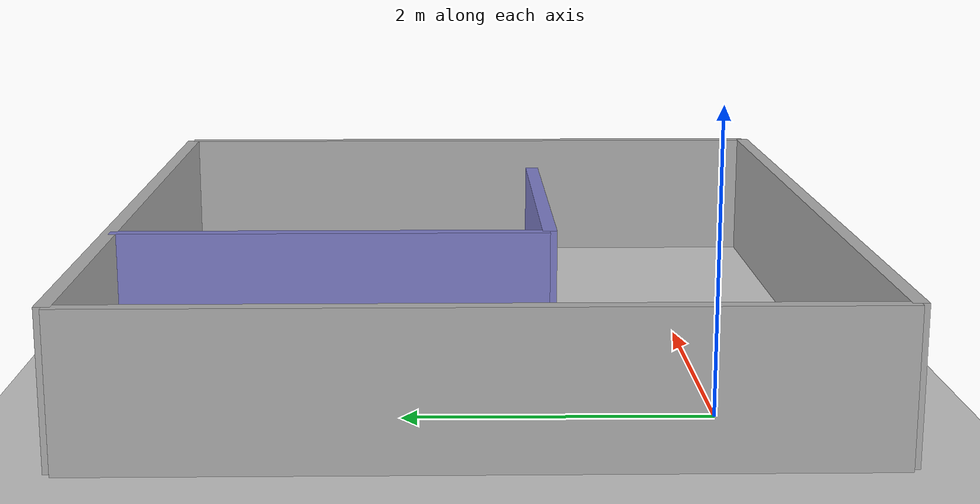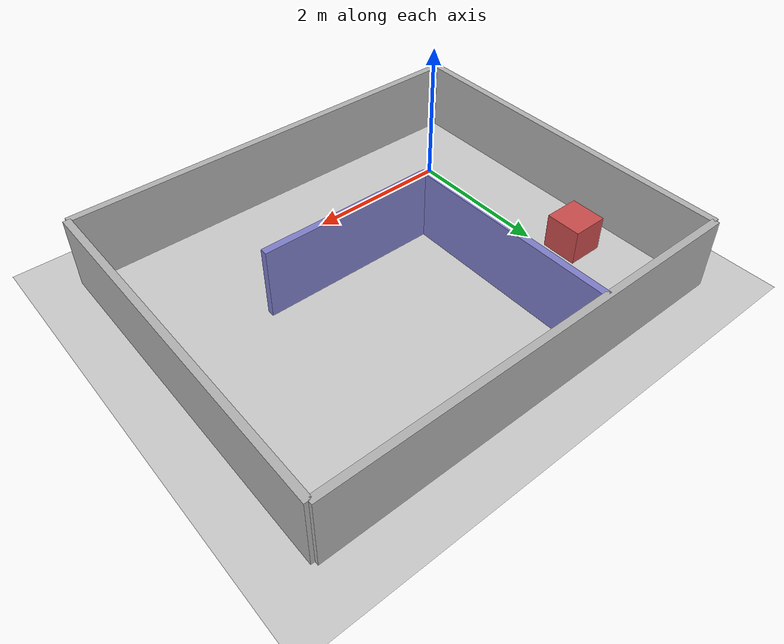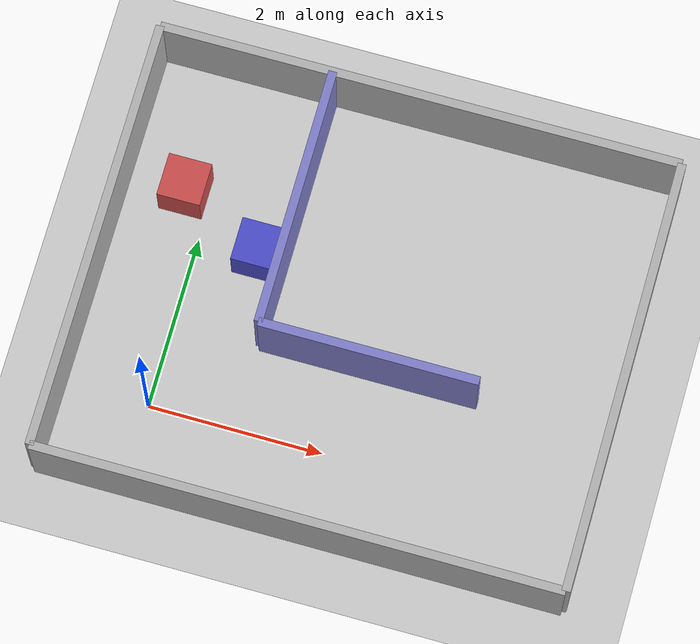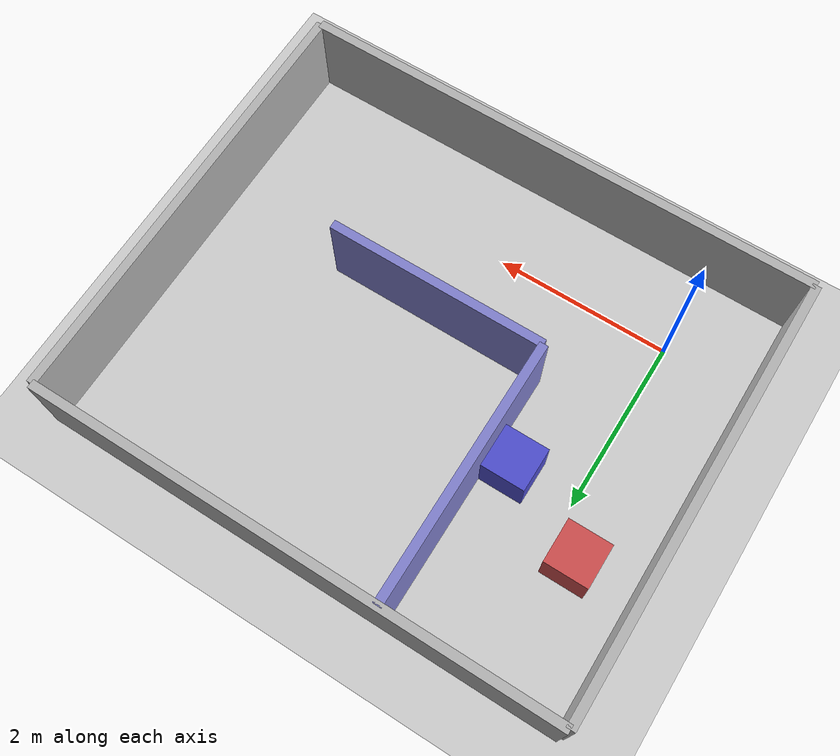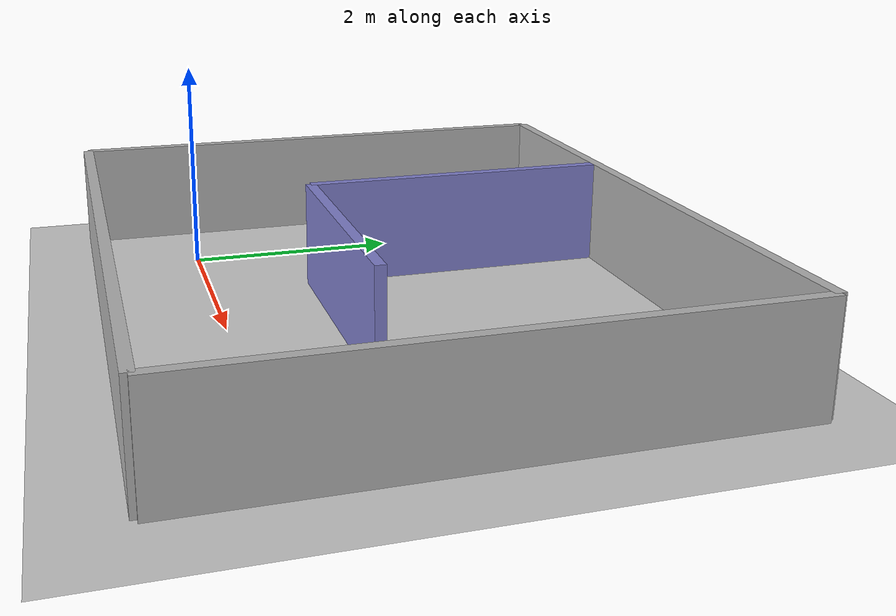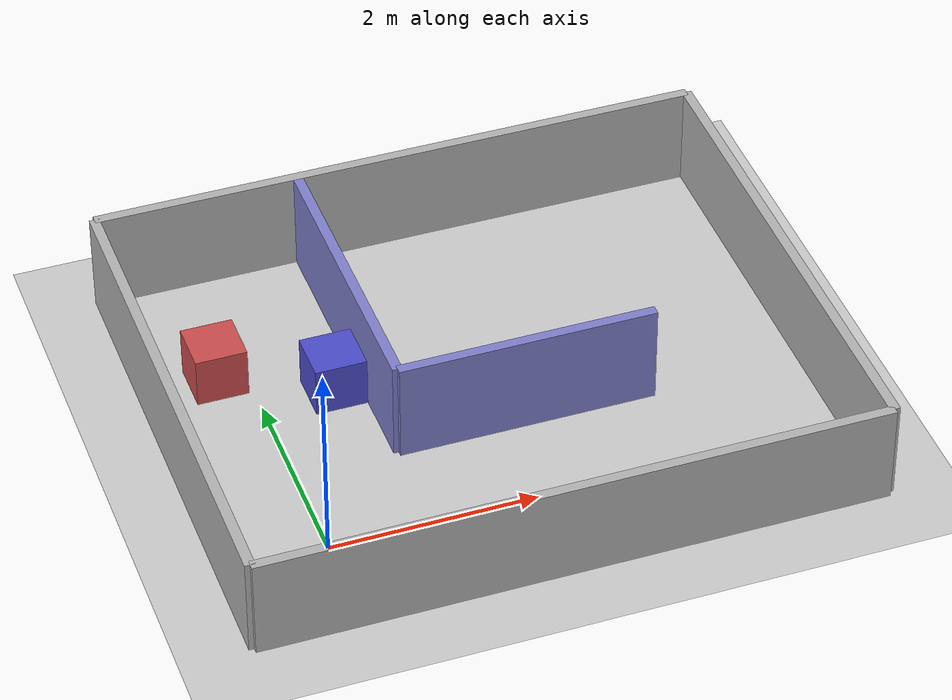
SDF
<?xml version="1.0" ?>
<sdf version="1.5">
  <world name="corridor_obstacle">

    <!-- 조명 + 바닥 -->
    <include><uri>model://sun</uri></include>
    <include><uri>model://ground_plane</uri></include>

    <!-- ===== 외벽 (6m x 5m) ===== -->

    <model name="wall_bottom">
      <static>true</static>
      <pose>2 -1 0.5 0 0 0</pose>
      <link name="link">
        <collision name="collision">
          <geometry><box><size>6 0.1 1</size></box></geometry>
        </collision>
        <visual name="visual">
          <geometry><box><size>6 0.1 1</size></box></geometry>
          <material><ambient>0.7 0.7 0.7 1</ambient></material>
        </visual>
      </link>
    </model>

    <model name="wall_top">
      <static>true</static>
      <pose>2 4 0.5 0 0 0</pose>
      <link name="link">
        <collision name="collision">
          <geometry><box><size>6 0.1 1</size></box></geometry>
        </collision>
        <visual name="visual">
          <geometry><box><size>6 0.1 1</size></box></geometry>
          <material><ambient>0.7 0.7 0.7 1</ambient></material>
        </visual>
      </link>
    </model>

    <model name="wall_left">
      <static>true</static>
      <pose>-1 1.5 0.5 0 0 0</pose>
      <link name="link">
        <collision name="collision">
          <geometry><box><size>0.1 5 1</size></box></geometry>
        </collision>
        <visual name="visual">
          <geometry><box><size>0.1 5 1</size></box></geometry>
          <material><ambient>0.7 0.7 0.7 1</ambient></material>
        </visual>
      </link>
    </model>

    <model name="wall_right">
      <static>true</static>
      <pose>5 1.5 0.5 0 0 0</pose>
      <link name="link">
        <collision name="collision">
          <geometry><box><size>0.1 5 1</size></box></geometry>
        </collision>
        <visual name="visual">
          <geometry><box><size>0.1 5 1</size></box></geometry>
          <material><ambient>0.7 0.7 0.7 1</ambient></material>
        </visual>
      </link>
    </model>

    <!-- ===== 내벽 (ㄱ자 복도) ===== -->

    <model name="inner_wall_vertical">
      <static>true</static>
      <pose>1 2.5 0.5 0 0 0</pose>
      <link name="link">
        <collision name="collision">
          <geometry><box><size>0.1 3 1</size></box></geometry>
        </collision>
        <visual name="visual">
          <geometry><box><size>0.1 3 1</size></box></geometry>
          <material><ambient>0.5 0.5 0.8 1</ambient></material>
        </visual>
      </link>
    </model>

    <model name="inner_wall_horizontal">
      <static>true</static>
      <pose>2.25 1 0.5 0 0 0</pose>
      <link name="link">
        <collision name="collision">
          <geometry><box><size>2.5 0.1 1</size></box></geometry>
        </collision>
        <visual name="visual">
          <geometry><box><size>2.5 0.1 1</size></box></geometry>
          <material><ambient>0.5 0.5 0.8 1</ambient></material>
        </visual>
      </link>
    </model>

    <!-- ===== 복도 안 장애물 (박스) ===== -->
    <!-- 복도 폭 약 2m (x=-1 ~ x=1) 안에 박스 2개 배치 -->
    <!-- 박스 사이 간격 약 0.6m — TurtleBot3 waffle_pi(폭 0.31m)가 겨우 통과 가능 -->

    <!-- 박스 A: 왼쪽 벽 근처 (복도 왼쪽을 막음) -->
    <model name="box_a">
      <static>true</static>
      <pose>-0.3 2.5 0.25 0 0 0</pose>
      <link name="link">
        <collision name="collision">
          <geometry><box><size>0.5 0.5 0.5</size></box></geometry>
        </collision>
        <visual name="visual">
          <geometry><box><size>0.5 0.5 0.5</size></box></geometry>
          <material><ambient>0.8 0.3 0.3 1</ambient></material>
        </visual>
      </link>
    </model>

    <!-- 박스 B: 내벽 근처 (복도 오른쪽을 막음) -->
    <model name="box_b">
      <static>true</static>
      <pose>0.7 2.0 0.25 0 0 0</pose>
      <link name="link">
        <collision name="collision">
          <geometry><box><size>0.5 0.5 0.5</size></box></geometry>
        </collision>
        <visual name="visual">
          <geometry><box><size>0.5 0.5 0.5</size></box></geometry>
          <material><ambient>0.3 0.3 0.8 1</ambient></material>
        </visual>
      </link>
    </model>

  </world>
</sdf>
